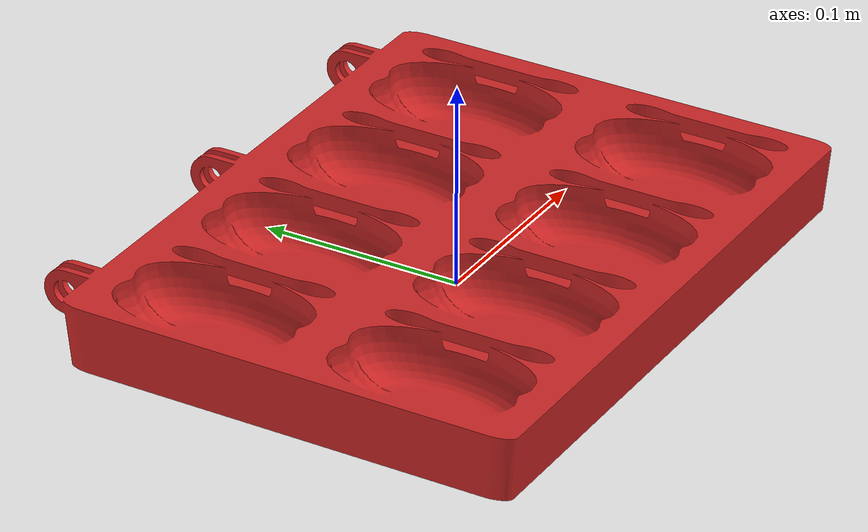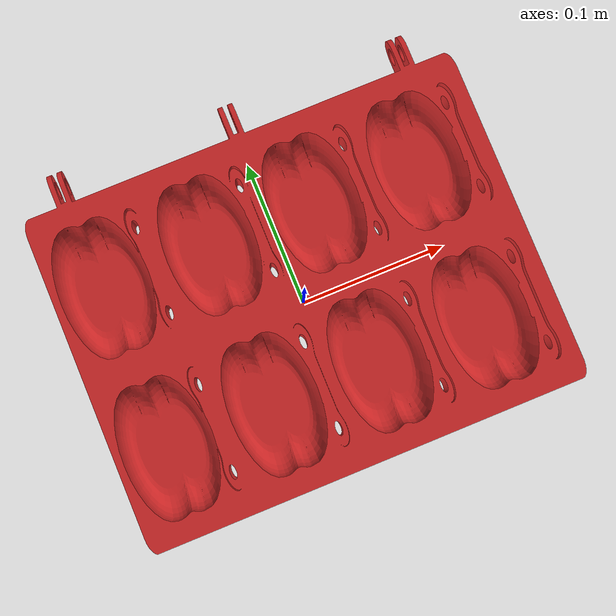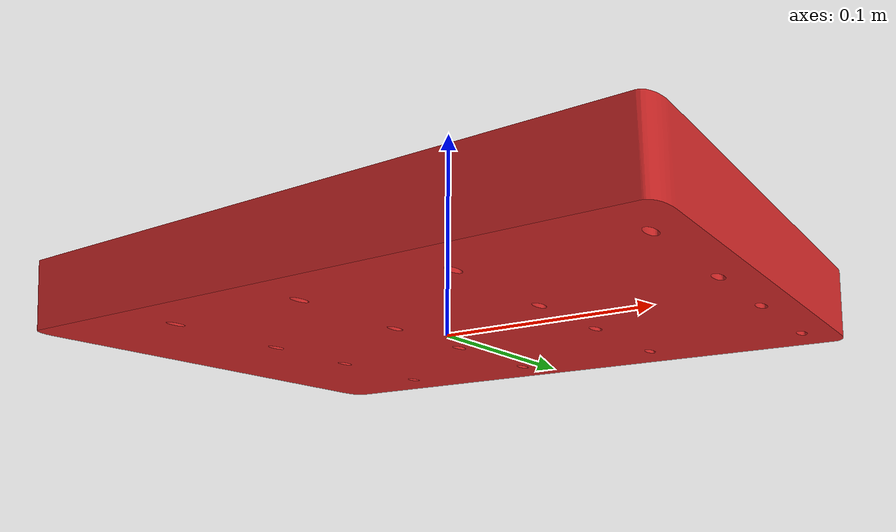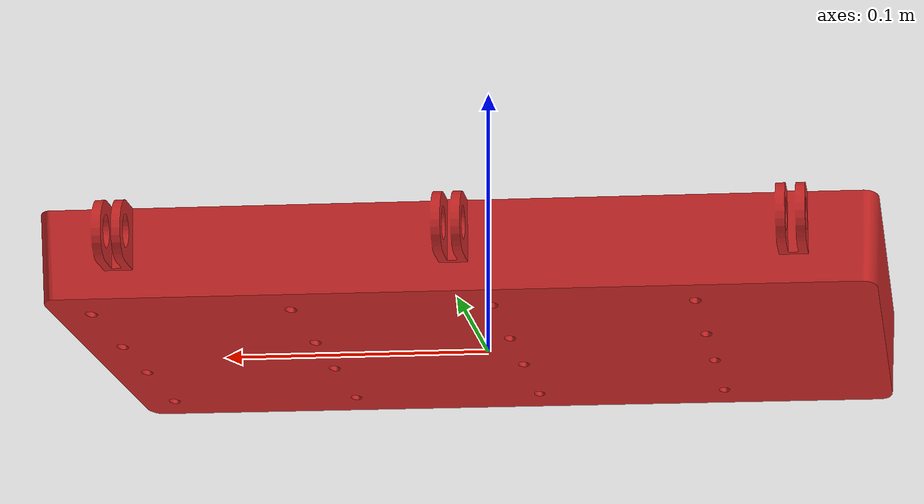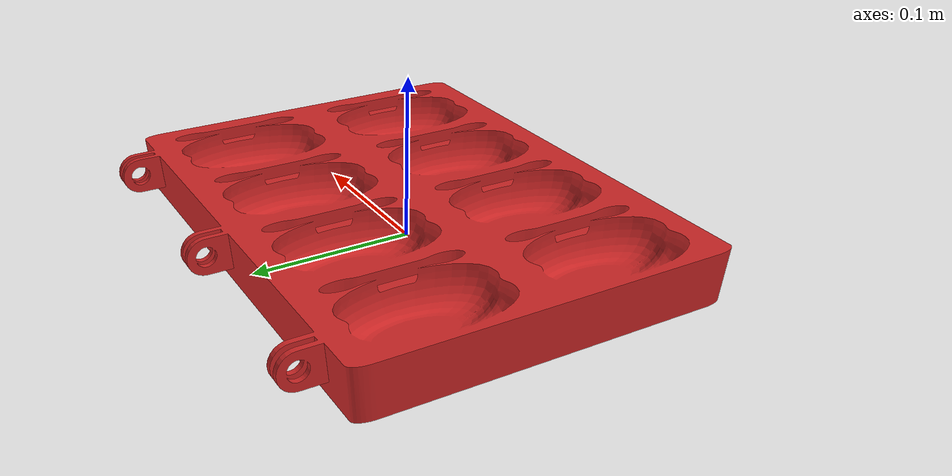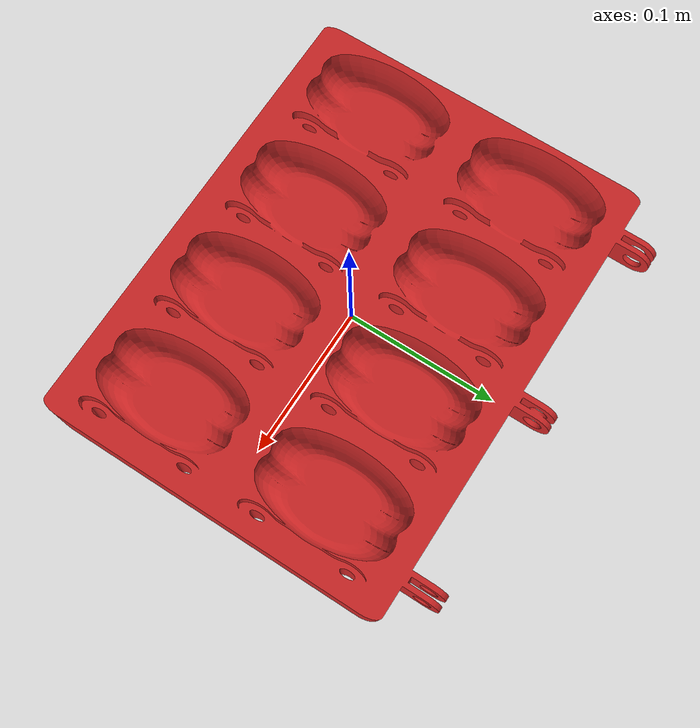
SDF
<?xml version="1.0" ?>

<sdf version="1.5">
  <model name="cast_mold">
    <static>false</static>
    <link name="link0">
      <collision name="collision">
        <geometry>
          <mesh>
            <uri>model://cast_mold/meshes/cast_mold.dae</uri>
          </mesh>
        </geometry>
      </collision>
      <visual name="visual">
        <geometry>
          <mesh>
            <uri>model://cast_mold/meshes/cast_mold.dae</uri>
          </mesh>
        </geometry>
        <material>
		    <script>
		        <uri>file://media/materials/scripts/gazebo.material</uri>
		        <name>Gazebo/Red</name>
		    </script>
        </material>
      </visual>
	  <inertial>
			<pose>0.0 0.0 0.016</pose>
		    <mass>0.001</mass>
		    <inertia>
		      <ixx>0.00000539835</ixx>
		      <iyy>0.0000075853</iyy>
		      <izz>0.000012813</izz>
		      <ixy>0.0</ixy>
		      <ixz>0.0</ixz>
		      <iyz>0.0</iyz>
		    </inertia>
	  </inertial>
	</link>
  </model>
</sdf>
